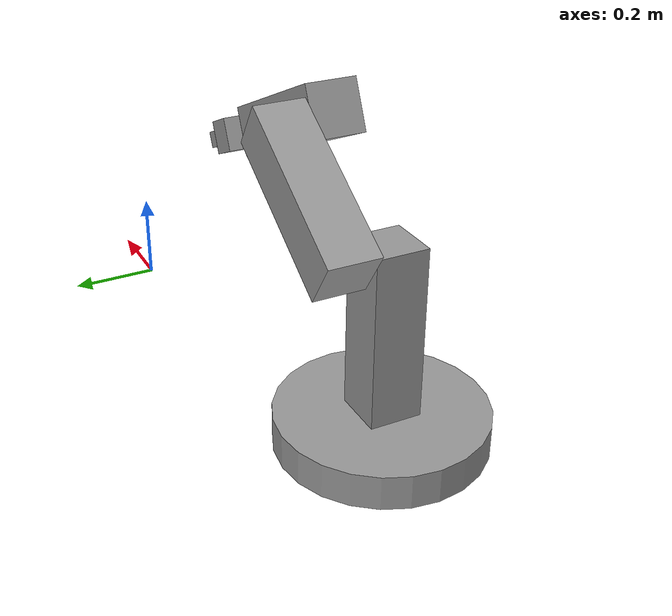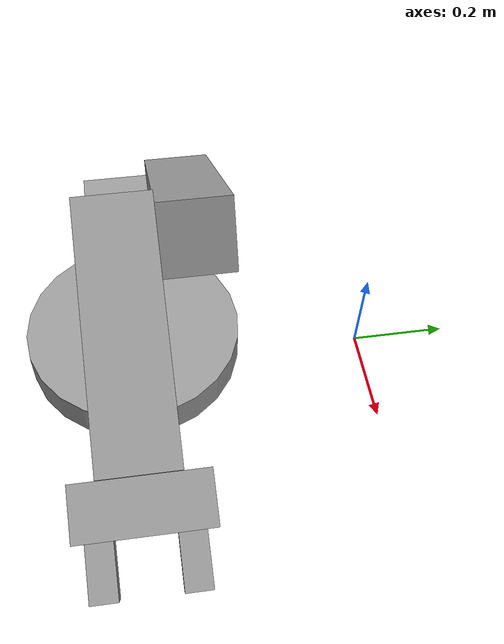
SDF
<?xml version='1.0'?>
<sdf version='1.7'>
  <model name='fixed_arm_robot'>
    <link name='link_0'>
      <inertial>
        <mass>1</mass>
        <inertia>
          <ixx>0.145833</ixx>
          <ixy>0</ixy>
          <ixz>0</ixz>
          <iyy>0.145833</iyy>
          <iyz>0</iyz>
          <izz>0.125</izz>
        </inertia>
        <pose>0 0 0 0 -0 0</pose>
      </inertial>
      <pose>-0.37347 -0.501985 -0.410714 0 -0 0</pose>
      <gravity>1</gravity>
      <self_collide>0</self_collide>
      <kinematic>0</kinematic>
      <enable_wind>0</enable_wind>
      <visual name='visual'>
        <pose>0 0 0 0 -0 0</pose>
        <geometry>
          <cylinder>
            <radius>0.3</radius>
            <length>0.1</length>
          </cylinder>
        </geometry>
        <material>
          <lighting>1</lighting>
          <script>
            <uri>file://media/materials/scripts/gazebo.material</uri>
            <name>Gazebo/Grey</name>
          </script>
          <shader type='pixel'>
            <normal_map>__default__</normal_map>
          </shader>
          <ambient>0.3 0.3 0.3 1</ambient>
          <diffuse>0.7 0.7 0.7 1</diffuse>
          <specular>0.01 0.01 0.01 1</specular>
          <emissive>0 0 0 1</emissive>
        </material>
        <transparency>0</transparency>
        <cast_shadows>1</cast_shadows>
      </visual>
      <collision name='collision'>
        <laser_retro>0</laser_retro>
        <max_contacts>10</max_contacts>
        <pose>0 0 0 0 -0 0</pose>
        <geometry>
          <cylinder>
            <radius>0.3</radius>
            <length>0.1</length>
          </cylinder>
        </geometry>
        <surface>
          <friction>
            <ode>
              <mu>1</mu>
              <mu2>1</mu2>
              <fdir1>0 0 0</fdir1>
              <slip1>0</slip1>
              <slip2>0</slip2>
            </ode>
            <torsional>
              <coefficient>1</coefficient>
              <patch_radius>0</patch_radius>
              <surface_radius>0</surface_radius>
              <use_patch_radius>1</use_patch_radius>
              <ode>
                <slip>0</slip>
              </ode>
            </torsional>
          </friction>
          <bounce>
            <restitution_coefficient>0</restitution_coefficient>
            <threshold>1e+06</threshold>
          </bounce>
          <contact>
            <collide_without_contact>0</collide_without_contact>
            <collide_without_contact_bitmask>1</collide_without_contact_bitmask>
            <collide_bitmask>1</collide_bitmask>
            <ode>
              <soft_cfm>0</soft_cfm>
              <soft_erp>0.2</soft_erp>
              <kp>1e+13</kp>
              <kd>1</kd>
              <max_vel>0.01</max_vel>
              <min_depth>0</min_depth>
            </ode>
            <bullet>
              <split_impulse>1</split_impulse>
              <split_impulse_penetration_threshold>-0.01</split_impulse_penetration_threshold>
              <soft_cfm>0</soft_cfm>
              <soft_erp>0.2</soft_erp>
              <kp>1e+13</kp>
              <kd>1</kd>
            </bullet>
          </contact>
        </surface>
      </collision>
    </link>
    <link name='link_1'>
      <inertial>
        <mass>1</mass>
        <inertia>
          <ixx>0.166667</ixx>
          <ixy>0</ixy>
          <ixz>0</ixz>
          <iyy>0.166667</iyy>
          <iyz>0</iyz>
          <izz>0.166667</izz>
        </inertia>
        <pose>0 0 0 0 -0 0</pose>
      </inertial>
      <pose>-0.37347 -0.501985 -0.110714 0 -0 0</pose>
      <gravity>1</gravity>
      <self_collide>0</self_collide>
      <kinematic>0</kinematic>
      <enable_wind>0</enable_wind>
      <visual name='visual'>
        <pose>0 0 0 0 -0 0</pose>
        <geometry>
          <box>
            <size>0.15 0.15 0.5</size>
          </box>
        </geometry>
        <material>
          <lighting>1</lighting>
          <script>
            <uri>file://media/materials/scripts/gazebo.material</uri>
            <name>Gazebo/Grey</name>
          </script>
          <shader type='pixel'>
            <normal_map>__default__</normal_map>
          </shader>
          <ambient>0.3 0.3 0.3 1</ambient>
          <diffuse>0.7 0.7 0.7 1</diffuse>
          <specular>0.01 0.01 0.01 1</specular>
          <emissive>0 0 0 1</emissive>
        </material>
        <transparency>0</transparency>
        <cast_shadows>1</cast_shadows>
      </visual>
      <collision name='collision'>
        <laser_retro>0</laser_retro>
        <max_contacts>10</max_contacts>
        <pose>0 0 0 0 -0 0</pose>
        <geometry>
          <box>
            <size>0.15 0.15 0.5</size>
          </box>
        </geometry>
        <surface>
          <friction>
            <ode>
              <mu>1</mu>
              <mu2>1</mu2>
              <fdir1>0 0 0</fdir1>
              <slip1>0</slip1>
              <slip2>0</slip2>
            </ode>
            <torsional>
              <coefficient>1</coefficient>
              <patch_radius>0</patch_radius>
              <surface_radius>0</surface_radius>
              <use_patch_radius>1</use_patch_radius>
              <ode>
                <slip>0</slip>
              </ode>
            </torsional>
          </friction>
          <bounce>
            <restitution_coefficient>0</restitution_coefficient>
            <threshold>1e+06</threshold>
          </bounce>
          <contact>
            <collide_without_contact>0</collide_without_contact>
            <collide_without_contact_bitmask>1</collide_without_contact_bitmask>
            <collide_bitmask>1</collide_bitmask>
            <ode>
              <soft_cfm>0</soft_cfm>
              <soft_erp>0.2</soft_erp>
              <kp>1e+13</kp>
              <kd>1</kd>
              <max_vel>0.01</max_vel>
              <min_depth>0</min_depth>
            </ode>
            <bullet>
              <split_impulse>1</split_impulse>
              <split_impulse_penetration_threshold>-0.01</split_impulse_penetration_threshold>
              <soft_cfm>0</soft_cfm>
              <soft_erp>0.2</soft_erp>
              <kp>1e+13</kp>
              <kd>1</kd>
            </bullet>
          </contact>
        </surface>
      </collision>
    </link>
    <link name='link_1_clone'>
      <inertial>
        <mass>1</mass>
        <inertia>
          <ixx>0.166667</ixx>
          <ixy>0</ixy>
          <ixz>0</ixz>
          <iyy>0.166667</iyy>
          <iyz>0</iyz>
          <izz>0.166667</izz>
        </inertia>
        <pose>0 0 0 0 -0 0</pose>
      </inertial>
      <pose>-0.37347 -0.351985 0.139286 0 1 0</pose>
      <gravity>1</gravity>
      <self_collide>0</self_collide>
      <kinematic>0</kinematic>
      <enable_wind>0</enable_wind>
      <visual name='visual'>
        <pose>0 0 0.175 0 -0 0</pose>
        <geometry>
          <box>
            <size>0.15 0.15 0.5</size>
          </box>
        </geometry>
        <material>
          <lighting>1</lighting>
          <script>
            <uri>file://media/materials/scripts/gazebo.material</uri>
            <name>Gazebo/Grey</name>
          </script>
          <shader type='pixel'>
            <normal_map>__default__</normal_map>
          </shader>
          <ambient>0.3 0.3 0.3 1</ambient>
          <diffuse>0.7 0.7 0.7 1</diffuse>
          <specular>0.01 0.01 0.01 1</specular>
          <emissive>0 0 0 1</emissive>
        </material>
        <transparency>0</transparency>
        <cast_shadows>1</cast_shadows>
      </visual>
      <collision name='collision'>
        <laser_retro>0</laser_retro>
        <max_contacts>10</max_contacts>
        <pose>0 0 0.175 0 -0 0</pose>
        <geometry>
          <box>
            <size>0.15 0.15 0.5</size>
          </box>
        </geometry>
        <surface>
          <friction>
            <ode>
              <mu>1</mu>
              <mu2>1</mu2>
              <fdir1>0 0 0</fdir1>
              <slip1>0</slip1>
              <slip2>0</slip2>
            </ode>
            <torsional>
              <coefficient>1</coefficient>
              <patch_radius>0</patch_radius>
              <surface_radius>0</surface_radius>
              <use_patch_radius>1</use_patch_radius>
              <ode>
                <slip>0</slip>
              </ode>
            </torsional>
          </friction>
          <bounce>
            <restitution_coefficient>0</restitution_coefficient>
            <threshold>1e+06</threshold>
          </bounce>
          <contact>
            <collide_without_contact>0</collide_without_contact>
            <collide_without_contact_bitmask>1</collide_without_contact_bitmask>
            <collide_bitmask>1</collide_bitmask>
            <ode>
              <soft_cfm>0</soft_cfm>
              <soft_erp>0.2</soft_erp>
              <kp>1e+13</kp>
              <kd>1</kd>
              <max_vel>0.01</max_vel>
              <min_depth>0</min_depth>
            </ode>
            <bullet>
              <split_impulse>1</split_impulse>
              <split_impulse_penetration_threshold>-0.01</split_impulse_penetration_threshold>
              <soft_cfm>0</soft_cfm>
              <soft_erp>0.2</soft_erp>
              <kp>1e+13</kp>
              <kd>1</kd>
            </bullet>
          </contact>
        </surface>
      </collision>
    </link>
    <link name='link_1_clone_clone'>
      <inertial>
        <mass>1</mass>
        <inertia>
          <ixx>0.166667</ixx>
          <ixy>0</ixy>
          <ixz>0</ixz>
          <iyy>0.166667</iyy>
          <iyz>0</iyz>
          <izz>0.166667</izz>
        </inertia>
        <pose>0 0 0 0 -0 0</pose>
      </inertial>
      <pose>-0.015845 -0.501985 0.368914 3.14159 1.14159 3.14159</pose>
      <gravity>1</gravity>
      <self_collide>0</self_collide>
      <kinematic>0</kinematic>
      <enable_wind>0</enable_wind>
      <visual name='visual'>
        <pose>0 0 0.175 0 -0 0</pose>
        <geometry>
          <box>
            <size>0.15 0.15 0.5</size>
          </box>
        </geometry>
        <material>
          <lighting>1</lighting>
          <script>
            <uri>file://media/materials/scripts/gazebo.material</uri>
            <name>Gazebo/Grey</name>
          </script>
          <shader type='pixel'>
            <normal_map>__default__</normal_map>
          </shader>
          <ambient>0.3 0.3 0.3 1</ambient>
          <diffuse>0.7 0.7 0.7 1</diffuse>
          <specular>0.01 0.01 0.01 1</specular>
          <emissive>0 0 0 1</emissive>
        </material>
        <transparency>0</transparency>
        <cast_shadows>1</cast_shadows>
      </visual>
      <collision name='collision'>
        <laser_retro>0</laser_retro>
        <max_contacts>10</max_contacts>
        <pose>0 0 0.175 0 -0 0</pose>
        <geometry>
          <box>
            <size>0.15 0.15 0.5</size>
          </box>
        </geometry>
        <surface>
          <friction>
            <ode>
              <mu>1</mu>
              <mu2>1</mu2>
              <fdir1>0 0 0</fdir1>
              <slip1>0</slip1>
              <slip2>0</slip2>
            </ode>
            <torsional>
              <coefficient>1</coefficient>
              <patch_radius>0</patch_radius>
              <surface_radius>0</surface_radius>
              <use_patch_radius>1</use_patch_radius>
              <ode>
                <slip>0</slip>
              </ode>
            </torsional>
          </friction>
          <bounce>
            <restitution_coefficient>0</restitution_coefficient>
            <threshold>1e+06</threshold>
          </bounce>
          <contact>
            <collide_without_contact>0</collide_without_contact>
            <collide_without_contact_bitmask>1</collide_without_contact_bitmask>
            <collide_bitmask>1</collide_bitmask>
            <ode>
              <soft_cfm>0</soft_cfm>
              <soft_erp>0.2</soft_erp>
              <kp>1e+13</kp>
              <kd>1</kd>
              <max_vel>0.01</max_vel>
              <min_depth>0</min_depth>
            </ode>
            <bullet>
              <split_impulse>1</split_impulse>
              <split_impulse_penetration_threshold>-0.01</split_impulse_penetration_threshold>
              <soft_cfm>0</soft_cfm>
              <soft_erp>0.2</soft_erp>
              <kp>1e+13</kp>
              <kd>1</kd>
            </bullet>
          </contact>
        </surface>
      </collision>
    </link>
    <link name='link_2'>
      <inertial>
        <mass>1</mass>
        <inertia>
          <ixx>0.166667</ixx>
          <ixy>0</ixy>
          <ixz>0</ixz>
          <iyy>0.166667</iyy>
          <iyz>0</iyz>
          <izz>0.166667</izz>
        </inertia>
        <pose>0 0 0 0 -0 0</pose>
      </inertial>
      <pose>0.416072 -0.501985 0.171244 -1.5708 1.14159 -3.14159</pose>
      <gravity>1</gravity>
      <self_collide>0</self_collide>
      <kinematic>0</kinematic>
      <enable_wind>0</enable_wind>
      <visual name='visual'>
        <pose>0 0 0 0 -0 0</pose>
        <geometry>
          <box>
            <size>0.1 0.1 0.25</size>
          </box>
        </geometry>
        <material>
          <lighting>1</lighting>
          <script>
            <uri>file://media/materials/scripts/gazebo.material</uri>
            <name>Gazebo/Grey</name>
          </script>
          <shader type='pixel'>
            <normal_map>__default__</normal_map>
          </shader>
          <ambient>0.3 0.3 0.3 1</ambient>
          <diffuse>0.7 0.7 0.7 1</diffuse>
          <specular>0.01 0.01 0.01 1</specular>
          <emissive>0 0 0 1</emissive>
        </material>
        <transparency>0</transparency>
        <cast_shadows>1</cast_shadows>
      </visual>
      <collision name='collision'>
        <laser_retro>0</laser_retro>
        <max_contacts>10</max_contacts>
        <pose>0 0 0 0 -0 0</pose>
        <geometry>
          <box>
            <size>0.1 0.1 0.25</size>
          </box>
        </geometry>
        <surface>
          <friction>
            <ode>
              <mu>1</mu>
              <mu2>1</mu2>
              <fdir1>0 0 0</fdir1>
              <slip1>0</slip1>
              <slip2>0</slip2>
            </ode>
            <torsional>
              <coefficient>1</coefficient>
              <patch_radius>0</patch_radius>
              <surface_radius>0</surface_radius>
              <use_patch_radius>1</use_patch_radius>
              <ode>
                <slip>0</slip>
              </ode>
            </torsional>
          </friction>
          <bounce>
            <restitution_coefficient>0</restitution_coefficient>
            <threshold>1e+06</threshold>
          </bounce>
          <contact>
            <collide_without_contact>0</collide_without_contact>
            <collide_without_contact_bitmask>1</collide_without_contact_bitmask>
            <collide_bitmask>1</collide_bitmask>
            <ode>
              <soft_cfm>0</soft_cfm>
              <soft_erp>0.2</soft_erp>
              <kp>1e+13</kp>
              <kd>1</kd>
              <max_vel>0.01</max_vel>
              <min_depth>0</min_depth>
            </ode>
            <bullet>
              <split_impulse>1</split_impulse>
              <split_impulse_penetration_threshold>-0.01</split_impulse_penetration_threshold>
              <soft_cfm>0</soft_cfm>
              <soft_erp>0.2</soft_erp>
              <kp>1e+13</kp>
              <kd>1</kd>
            </bullet>
          </contact>
        </surface>
      </collision>
    </link>
    <link name='link_3'>
      <inertial>
        <mass>1</mass>
        <inertia>
          <ixx>0.166667</ixx>
          <ixy>0</ixy>
          <ixz>0</ixz>
          <iyy>0.166667</iyy>
          <iyz>0</iyz>
          <izz>0.166667</izz>
        </inertia>
        <pose>0 0 0 0 -0 0</pose>
      </inertial>
      <pose>0.507001 -0.421985 0.12963 -1e-06 1.14159 -3.14159</pose>
      <gravity>1</gravity>
      <self_collide>0</self_collide>
      <kinematic>0</kinematic>
      <enable_wind>0</enable_wind>
      <visual name='visual'>
        <pose>0 0 0 0 -0 0</pose>
        <geometry>
          <box>
            <size>0.05 0.05 0.1</size>
          </box>
        </geometry>
        <material>
          <lighting>1</lighting>
          <script>
            <uri>file://media/materials/scripts/gazebo.material</uri>
            <name>Gazebo/Grey</name>
          </script>
          <shader type='pixel'>
            <normal_map>__default__</normal_map>
          </shader>
          <ambient>0.3 0.3 0.3 1</ambient>
          <diffuse>0.7 0.7 0.7 1</diffuse>
          <specular>0.01 0.01 0.01 1</specular>
          <emissive>0 0 0 1</emissive>
        </material>
        <transparency>0</transparency>
        <cast_shadows>1</cast_shadows>
      </visual>
      <collision name='collision'>
        <laser_retro>0</laser_retro>
        <max_contacts>10</max_contacts>
        <pose>0 0 0 0 -0 0</pose>
        <geometry>
          <box>
            <size>0.05 0.05 0.1</size>
          </box>
        </geometry>
        <surface>
          <friction>
            <ode>
              <mu>1</mu>
              <mu2>1</mu2>
              <fdir1>0 0 0</fdir1>
              <slip1>0</slip1>
              <slip2>0</slip2>
            </ode>
            <torsional>
              <coefficient>1</coefficient>
              <patch_radius>0</patch_radius>
              <surface_radius>0</surface_radius>
              <use_patch_radius>1</use_patch_radius>
              <ode>
                <slip>0</slip>
              </ode>
            </torsional>
          </friction>
          <bounce>
            <restitution_coefficient>0</restitution_coefficient>
            <threshold>1e+06</threshold>
          </bounce>
          <contact>
            <collide_without_contact>0</collide_without_contact>
            <collide_without_contact_bitmask>1</collide_without_contact_bitmask>
            <collide_bitmask>1</collide_bitmask>
            <ode>
              <soft_cfm>0</soft_cfm>
              <soft_erp>0.2</soft_erp>
              <kp>1e+13</kp>
              <kd>1</kd>
              <max_vel>0.01</max_vel>
              <min_depth>0</min_depth>
            </ode>
            <bullet>
              <split_impulse>1</split_impulse>
              <split_impulse_penetration_threshold>-0.01</split_impulse_penetration_threshold>
              <soft_cfm>0</soft_cfm>
              <soft_erp>0.2</soft_erp>
              <kp>1e+13</kp>
              <kd>1</kd>
            </bullet>
          </contact>
        </surface>
      </collision>
    </link>
    <link name='link_3_clone'>
      <inertial>
        <mass>1</mass>
        <inertia>
          <ixx>0.166667</ixx>
          <ixy>0</ixy>
          <ixz>0</ixz>
          <iyy>0.166667</iyy>
          <iyz>0</iyz>
          <izz>0.166667</izz>
        </inertia>
        <pose>0 0 0 0 -0 0</pose>
      </inertial>
      <pose>0.507002 -0.581985 0.12963 -1e-06 1.14159 -3.14159</pose>
      <gravity>1</gravity>
      <self_collide>0</self_collide>
      <kinematic>0</kinematic>
      <enable_wind>0</enable_wind>
      <visual name='visual'>
        <pose>0 0 0 0 -0 0</pose>
        <geometry>
          <box>
            <size>0.05 0.05 0.1</size>
          </box>
        </geometry>
        <material>
          <lighting>1</lighting>
          <script>
            <uri>file://media/materials/scripts/gazebo.material</uri>
            <name>Gazebo/Grey</name>
          </script>
          <shader type='pixel'>
            <normal_map>__default__</normal_map>
          </shader>
          <ambient>0.3 0.3 0.3 1</ambient>
          <diffuse>0.7 0.7 0.7 1</diffuse>
          <specular>0.01 0.01 0.01 1</specular>
          <emissive>0 0 0 1</emissive>
        </material>
        <transparency>0</transparency>
        <cast_shadows>1</cast_shadows>
      </visual>
      <collision name='collision'>
        <laser_retro>0</laser_retro>
        <max_contacts>10</max_contacts>
        <pose>0 0 0 0 -0 0</pose>
        <geometry>
          <box>
            <size>0.05 0.05 0.1</size>
          </box>
        </geometry>
        <surface>
          <friction>
            <ode>
              <mu>1</mu>
              <mu2>1</mu2>
              <fdir1>0 0 0</fdir1>
              <slip1>0</slip1>
              <slip2>0</slip2>
            </ode>
            <torsional>
              <coefficient>1</coefficient>
              <patch_radius>0</patch_radius>
              <surface_radius>0</surface_radius>
              <use_patch_radius>1</use_patch_radius>
              <ode>
                <slip>0</slip>
              </ode>
            </torsional>
          </friction>
          <bounce>
            <restitution_coefficient>0</restitution_coefficient>
            <threshold>1e+06</threshold>
          </bounce>
          <contact>
            <collide_without_contact>0</collide_without_contact>
            <collide_without_contact_bitmask>1</collide_without_contact_bitmask>
            <collide_bitmask>1</collide_bitmask>
            <ode>
              <soft_cfm>0</soft_cfm>
              <soft_erp>0.2</soft_erp>
              <kp>1e+13</kp>
              <kd>1</kd>
              <max_vel>0.01</max_vel>
              <min_depth>0</min_depth>
            </ode>
            <bullet>
              <split_impulse>1</split_impulse>
              <split_impulse_penetration_threshold>-0.01</split_impulse_penetration_threshold>
              <soft_cfm>0</soft_cfm>
              <soft_erp>0.2</soft_erp>
              <kp>1e+13</kp>
              <kd>1</kd>
            </bullet>
          </contact>
        </surface>
      </collision>
    </link>
    <joint name='link_0_JOINT_0' type='fixed'>
      <parent>link_0</parent>
      <child>link_1</child>
      <pose>0 0 0 0 -0 0</pose>
      <physics>
        <ode>
          <limit>
            <cfm>0</cfm>
            <erp>0.2</erp>
          </limit>
          <suspension>
            <cfm>0</cfm>
            <erp>0.2</erp>
          </suspension>
        </ode>
      </physics>
    </joint>
    <joint name='link_1_JOINT_5' type='fixed'>
      <parent>link_1</parent>
      <child>link_1_clone</child>
      <pose>0 0 0 0 -0 0</pose>
      <physics>
        <ode>
          <limit>
            <cfm>0</cfm>
            <erp>0.2</erp>
          </limit>
          <suspension>
            <cfm>0</cfm>
            <erp>0.2</erp>
          </suspension>
        </ode>
      </physics>
    </joint>
    <joint name='link_1_clone_JOINT_6' type='fixed'>
      <parent>link_1_clone</parent>
      <child>link_1_clone_clone</child>
      <pose>0 0 0 0 -0 0</pose>
      <physics>
        <ode>
          <limit>
            <cfm>0</cfm>
            <erp>0.2</erp>
          </limit>
          <suspension>
            <cfm>0</cfm>
            <erp>0.2</erp>
          </suspension>
        </ode>
      </physics>
    </joint>
    <joint name='link_1_clone_clone_JOINT_8' type='fixed'>
      <parent>link_1_clone_clone</parent>
      <child>link_2</child>
      <pose>0 0 0 0 -0 0</pose>
      <physics>
        <ode>
          <limit>
            <cfm>0</cfm>
            <erp>0.2</erp>
          </limit>
          <suspension>
            <cfm>0</cfm>
            <erp>0.2</erp>
          </suspension>
        </ode>
      </physics>
    </joint>
    <joint name='link_2_JOINT_9' type='fixed'>
      <parent>link_2</parent>
      <child>link_3</child>
      <pose>0 0 0 0 -0 0</pose>
      <physics>
        <ode>
          <limit>
            <cfm>0</cfm>
            <erp>0.2</erp>
          </limit>
          <suspension>
            <cfm>0</cfm>
            <erp>0.2</erp>
          </suspension>
        </ode>
      </physics>
    </joint>
    <joint name='link_3_JOINT_10' type='fixed'>
      <parent>link_3</parent>
      <child>link_3_clone</child>
      <pose>0 0 0 0 -0 0</pose>
      <physics>
        <ode>
          <limit>
            <cfm>0</cfm>
            <erp>0.2</erp>
          </limit>
          <suspension>
            <cfm>0</cfm>
            <erp>0.2</erp>
          </suspension>
        </ode>
      </physics>
    </joint>
    <static>1</static>
    <allow_auto_disable>1</allow_auto_disable>
  </model>
</sdf>
